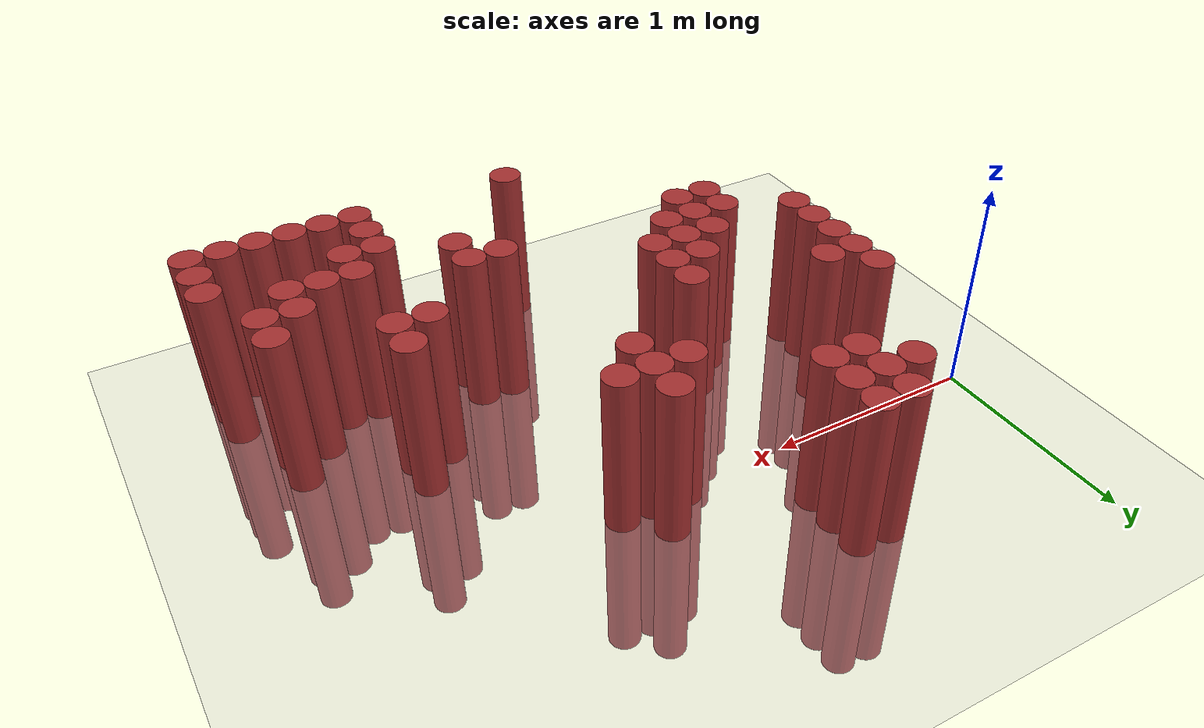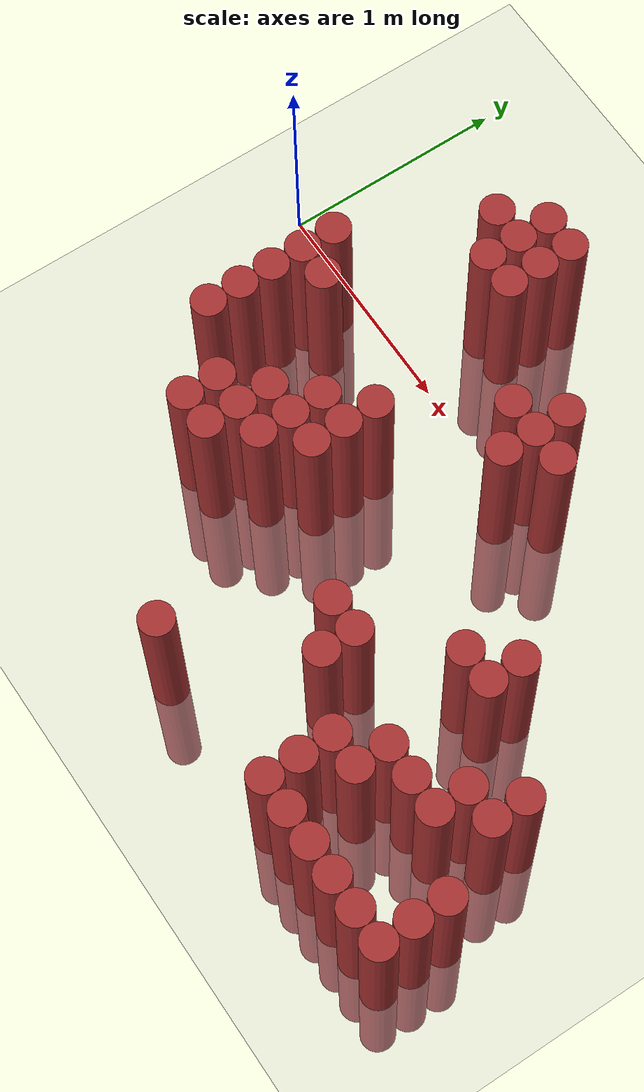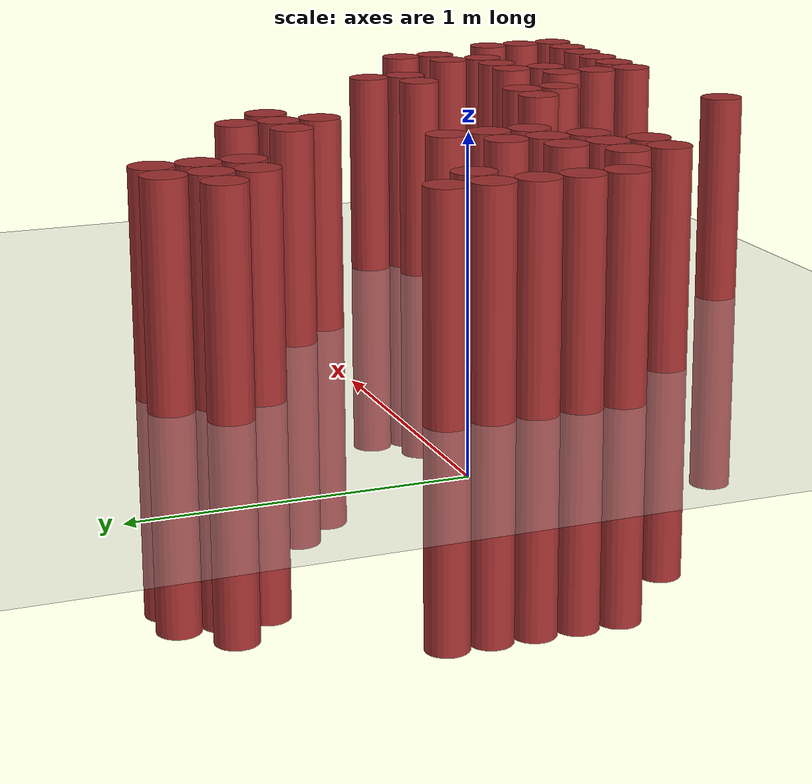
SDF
<sdf version="1.6">
 <world name="default">
  <model name="ground_plane">
   <static>1</static>
   <link name="link">
    <collision name="collision">
     <geometry><plane><normal>0 0 1</normal><size>100 100</size></plane></geometry>
     <surface><friction><ode><mu>100</mu><mu2>50</mu2></ode></friction></surface>
    </collision>
    <visual name="visual">
     <cast_shadows>0</cast_shadows>
     <geometry><plane><normal>0 0 1</normal><size>100 100</size></plane></geometry>
     <material>
      <script><uri>file://media/materials/scripts/gazebo.material</uri><name>Gazebo/Grey</name></script>
     </material>
    </visual>
   </link>
  </model>
  <model name="unit_cylinder_390">
   <static>1</static>
   <pose>0.475000 -0.725000 0.000000 0.000000 0.000000 0.000000</pose>
   <link name="link">
    <inertial>
     <mass>1</mass>
     <inertia><ixx>0.145833</ixx><ixy>0</ixy><ixz>0</ixz><iyy>0.145833</iyy><iyz>0</iyz><izz>0.125</izz></inertia>
    </inertial>
    <collision name="collision">
     <geometry><cylinder><radius>0.075000</radius><length>1.5</length></cylinder></geometry>
    </collision>
    <visual name="visual">
     <geometry><cylinder><radius>0.075000</radius><length>1.5</length></cylinder></geometry>
     <material>
      <ambient>0.648000 0.192000 0.192000 1</ambient>
      <diffuse>0.648000 0.192000 0.192000 1</diffuse>
     </material>
     <material>
      <script><name>Gazebo/Grey</name><uri>file://media/materials/scripts/gazebo.material</uri></script>
     </material>
    </visual>
   </link>
  </model>
  <model name="unit_cylinder_391">
   <static>1</static>
   <pose>0.475000 -0.575000 0.000000 0.000000 0.000000 0.000000</pose>
   <link name="link">
    <inertial>
     <mass>1</mass>
     <inertia><ixx>0.145833</ixx><ixy>0</ixy><ixz>0</ixz><iyy>0.145833</iyy><iyz>0</iyz><izz>0.125</izz></inertia>
    </inertial>
    <collision name="collision">
     <geometry><cylinder><radius>0.075000</radius><length>1.5</length></cylinder></geometry>
    </collision>
    <visual name="visual">
     <geometry><cylinder><radius>0.075000</radius><length>1.5</length></cylinder></geometry>
     <material>
      <ambient>0.648000 0.192000 0.192000 1</ambient>
      <diffuse>0.648000 0.192000 0.192000 1</diffuse>
     </material>
     <material>
      <script><name>Gazebo/Grey</name><uri>file://media/materials/scripts/gazebo.material</uri></script>
     </material>
    </visual>
   </link>
  </model>
  <model name="unit_cylinder_392">
   <static>1</static>
   <pose>0.475000 -0.425000 0.000000 0.000000 0.000000 0.000000</pose>
   <link name="link">
    <inertial>
     <mass>1</mass>
     <inertia><ixx>0.145833</ixx><ixy>0</ixy><ixz>0</ixz><iyy>0.145833</iyy><iyz>0</iyz><izz>0.125</izz></inertia>
    </inertial>
    <collision name="collision">
     <geometry><cylinder><radius>0.075000</radius><length>1.5</length></cylinder></geometry>
    </collision>
    <visual name="visual">
     <geometry><cylinder><radius>0.075000</radius><length>1.5</length></cylinder></geometry>
     <material>
      <ambient>0.648000 0.192000 0.192000 1</ambient>
      <diffuse>0.648000 0.192000 0.192000 1</diffuse>
     </material>
     <material>
      <script><name>Gazebo/Grey</name><uri>file://media/materials/scripts/gazebo.material</uri></script>
     </material>
    </visual>
   </link>
  </model>
  <model name="unit_cylinder_393">
   <static>1</static>
   <pose>0.475000 -0.275000 0.000000 0.000000 0.000000 0.000000</pose>
   <link name="link">
    <inertial>
     <mass>1</mass>
     <inertia><ixx>0.145833</ixx><ixy>0</ixy><ixz>0</ixz><iyy>0.145833</iyy><iyz>0</iyz><izz>0.125</izz></inertia>
    </inertial>
    <collision name="collision">
     <geometry><cylinder><radius>0.075000</radius><length>1.5</length></cylinder></geometry>
    </collision>
    <visual name="visual">
     <geometry><cylinder><radius>0.075000</radius><length>1.5</length></cylinder></geometry>
     <material>
      <ambient>0.648000 0.192000 0.192000 1</ambient>
      <diffuse>0.648000 0.192000 0.192000 1</diffuse>
     </material>
     <material>
      <script><name>Gazebo/Grey</name><uri>file://media/materials/scripts/gazebo.material</uri></script>
     </material>
    </visual>
   </link>
  </model>
  <model name="unit_cylinder_394">
   <static>1</static>
   <pose>0.475000 -0.125000 0.000000 0.000000 0.000000 0.000000</pose>
   <link name="link">
    <inertial>
     <mass>1</mass>
     <inertia><ixx>0.145833</ixx><ixy>0</ixy><ixz>0</ixz><iyy>0.145833</iyy><iyz>0</iyz><izz>0.125</izz></inertia>
    </inertial>
    <collision name="collision">
     <geometry><cylinder><radius>0.075000</radius><length>1.5</length></cylinder></geometry>
    </collision>
    <visual name="visual">
     <geometry><cylinder><radius>0.075000</radius><length>1.5</length></cylinder></geometry>
     <material>
      <ambient>0.648000 0.192000 0.192000 1</ambient>
      <diffuse>0.648000 0.192000 0.192000 1</diffuse>
     </material>
     <material>
      <script><name>Gazebo/Grey</name><uri>file://media/materials/scripts/gazebo.material</uri></script>
     </material>
    </visual>
   </link>
  </model>
  <model name="unit_cylinder_401">
   <static>1</static>
   <pose>0.625000 -0.275000 0.000000 0.000000 0.000000 0.000000</pose>
   <link name="link">
    <inertial>
     <mass>1</mass>
     <inertia><ixx>0.145833</ixx><ixy>0</ixy><ixz>0</ixz><iyy>0.145833</iyy><iyz>0</iyz><izz>0.125</izz></inertia>
    </inertial>
    <collision name="collision">
     <geometry><cylinder><radius>0.075000</radius><length>1.5</length></cylinder></geometry>
    </collision>
    <visual name="visual">
     <geometry><cylinder><radius>0.075000</radius><length>1.5</length></cylinder></geometry>
     <material>
      <ambient>0.648000 0.192000 0.192000 1</ambient>
      <diffuse>0.648000 0.192000 0.192000 1</diffuse>
     </material>
     <material>
      <script><name>Gazebo/Grey</name><uri>file://media/materials/scripts/gazebo.material</uri></script>
     </material>
    </visual>
   </link>
  </model>
  <model name="unit_cylinder_410">
   <static>1</static>
   <pose>0.775000 -1.025000 0.000000 0.000000 0.000000 0.000000</pose>
   <link name="link">
    <inertial>
     <mass>1</mass>
     <inertia><ixx>0.145833</ixx><ixy>0</ixy><ixz>0</ixz><iyy>0.145833</iyy><iyz>0</iyz><izz>0.125</izz></inertia>
    </inertial>
    <collision name="collision">
     <geometry><cylinder><radius>0.075000</radius><length>1.5</length></cylinder></geometry>
    </collision>
    <visual name="visual">
     <geometry><cylinder><radius>0.075000</radius><length>1.5</length></cylinder></geometry>
     <material>
      <ambient>0.648000 0.192000 0.192000 1</ambient>
      <diffuse>0.648000 0.192000 0.192000 1</diffuse>
     </material>
     <material>
      <script><name>Gazebo/Grey</name><uri>file://media/materials/scripts/gazebo.material</uri></script>
     </material>
    </visual>
   </link>
  </model>
  <model name="unit_cylinder_411">
   <static>1</static>
   <pose>0.775000 -0.875000 0.000000 0.000000 0.000000 0.000000</pose>
   <link name="link">
    <inertial>
     <mass>1</mass>
     <inertia><ixx>0.145833</ixx><ixy>0</ixy><ixz>0</ixz><iyy>0.145833</iyy><iyz>0</iyz><izz>0.125</izz></inertia>
    </inertial>
    <collision name="collision">
     <geometry><cylinder><radius>0.075000</radius><length>1.5</length></cylinder></geometry>
    </collision>
    <visual name="visual">
     <geometry><cylinder><radius>0.075000</radius><length>1.5</length></cylinder></geometry>
     <material>
      <ambient>0.648000 0.192000 0.192000 1</ambient>
      <diffuse>0.648000 0.192000 0.192000 1</diffuse>
     </material>
     <material>
      <script><name>Gazebo/Grey</name><uri>file://media/materials/scripts/gazebo.material</uri></script>
     </material>
    </visual>
   </link>
  </model>
  <model name="unit_cylinder_412">
   <static>1</static>
   <pose>0.775000 0.475000 0.000000 0.000000 0.000000 0.000000</pose>
   <link name="link">
    <inertial>
     <mass>1</mass>
     <inertia><ixx>0.145833</ixx><ixy>0</ixy><ixz>0</ixz><iyy>0.145833</iyy><iyz>0</iyz><izz>0.125</izz></inertia>
    </inertial>
    <collision name="collision">
     <geometry><cylinder><radius>0.075000</radius><length>1.5</length></cylinder></geometry>
    </collision>
    <visual name="visual">
     <geometry><cylinder><radius>0.075000</radius><length>1.5</length></cylinder></geometry>
     <material>
      <ambient>0.648000 0.192000 0.192000 1</ambient>
      <diffuse>0.648000 0.192000 0.192000 1</diffuse>
     </material>
     <material>
      <script><name>Gazebo/Grey</name><uri>file://media/materials/scripts/gazebo.material</uri></script>
     </material>
    </visual>
   </link>
  </model>
  <model name="unit_cylinder_417">
   <static>1</static>
   <pose>0.925000 -1.025000 0.000000 0.000000 0.000000 0.000000</pose>
   <link name="link">
    <inertial>
     <mass>1</mass>
     <inertia><ixx>0.145833</ixx><ixy>0</ixy><ixz>0</ixz><iyy>0.145833</iyy><iyz>0</iyz><izz>0.125</izz></inertia>
    </inertial>
    <collision name="collision">
     <geometry><cylinder><radius>0.075000</radius><length>1.5</length></cylinder></geometry>
    </collision>
    <visual name="visual">
     <geometry><cylinder><radius>0.075000</radius><length>1.5</length></cylinder></geometry>
     <material>
      <ambient>0.648000 0.192000 0.192000 1</ambient>
      <diffuse>0.648000 0.192000 0.192000 1</diffuse>
     </material>
     <material>
      <script><name>Gazebo/Grey</name><uri>file://media/materials/scripts/gazebo.material</uri></script>
     </material>
    </visual>
   </link>
  </model>
  <model name="unit_cylinder_418">
   <static>1</static>
   <pose>0.925000 -0.875000 0.000000 0.000000 0.000000 0.000000</pose>
   <link name="link">
    <inertial>
     <mass>1</mass>
     <inertia><ixx>0.145833</ixx><ixy>0</ixy><ixz>0</ixz><iyy>0.145833</iyy><iyz>0</iyz><izz>0.125</izz></inertia>
    </inertial>
    <collision name="collision">
     <geometry><cylinder><radius>0.075000</radius><length>1.5</length></cylinder></geometry>
    </collision>
    <visual name="visual">
     <geometry><cylinder><radius>0.075000</radius><length>1.5</length></cylinder></geometry>
     <material>
      <ambient>0.648000 0.192000 0.192000 1</ambient>
      <diffuse>0.648000 0.192000 0.192000 1</diffuse>
     </material>
     <material>
      <script><name>Gazebo/Grey</name><uri>file://media/materials/scripts/gazebo.material</uri></script>
     </material>
    </visual>
   </link>
  </model>
  <model name="unit_cylinder_419">
   <static>1</static>
   <pose>0.925000 -0.725000 0.000000 0.000000 0.000000 0.000000</pose>
   <link name="link">
    <inertial>
     <mass>1</mass>
     <inertia><ixx>0.145833</ixx><ixy>0</ixy><ixz>0</ixz><iyy>0.145833</iyy><iyz>0</iyz><izz>0.125</izz></inertia>
    </inertial>
    <collision name="collision">
     <geometry><cylinder><radius>0.075000</radius><length>1.5</length></cylinder></geometry>
    </collision>
    <visual name="visual">
     <geometry><cylinder><radius>0.075000</radius><length>1.5</length></cylinder></geometry>
     <material>
      <ambient>0.648000 0.192000 0.192000 1</ambient>
      <diffuse>0.648000 0.192000 0.192000 1</diffuse>
     </material>
     <material>
      <script><name>Gazebo/Grey</name><uri>file://media/materials/scripts/gazebo.material</uri></script>
     </material>
    </visual>
   </link>
  </model>
  <model name="unit_cylinder_420">
   <static>1</static>
   <pose>0.925000 0.325000 0.000000 0.000000 0.000000 0.000000</pose>
   <link name="link">
    <inertial>
     <mass>1</mass>
     <inertia><ixx>0.145833</ixx><ixy>0</ixy><ixz>0</ixz><iyy>0.145833</iyy><iyz>0</iyz><izz>0.125</izz></inertia>
    </inertial>
    <collision name="collision">
     <geometry><cylinder><radius>0.075000</radius><length>1.5</length></cylinder></geometry>
    </collision>
    <visual name="visual">
     <geometry><cylinder><radius>0.075000</radius><length>1.5</length></cylinder></geometry>
     <material>
      <ambient>0.648000 0.192000 0.192000 1</ambient>
      <diffuse>0.648000 0.192000 0.192000 1</diffuse>
     </material>
     <material>
      <script><name>Gazebo/Grey</name><uri>file://media/materials/scripts/gazebo.material</uri></script>
     </material>
    </visual>
   </link>
  </model>
  <model name="unit_cylinder_421">
   <static>1</static>
   <pose>0.925000 0.475000 0.000000 0.000000 0.000000 0.000000</pose>
   <link name="link">
    <inertial>
     <mass>1</mass>
     <inertia><ixx>0.145833</ixx><ixy>0</ixy><ixz>0</ixz><iyy>0.145833</iyy><iyz>0</iyz><izz>0.125</izz></inertia>
    </inertial>
    <collision name="collision">
     <geometry><cylinder><radius>0.075000</radius><length>1.5</length></cylinder></geometry>
    </collision>
    <visual name="visual">
     <geometry><cylinder><radius>0.075000</radius><length>1.5</length></cylinder></geometry>
     <material>
      <ambient>0.648000 0.192000 0.192000 1</ambient>
      <diffuse>0.648000 0.192000 0.192000 1</diffuse>
     </material>
     <material>
      <script><name>Gazebo/Grey</name><uri>file://media/materials/scripts/gazebo.material</uri></script>
     </material>
    </visual>
   </link>
  </model>
  <model name="unit_cylinder_422">
   <static>1</static>
   <pose>0.925000 0.625000 0.000000 0.000000 0.000000 0.000000</pose>
   <link name="link">
    <inertial>
     <mass>1</mass>
     <inertia><ixx>0.145833</ixx><ixy>0</ixy><ixz>0</ixz><iyy>0.145833</iyy><iyz>0</iyz><izz>0.125</izz></inertia>
    </inertial>
    <collision name="collision">
     <geometry><cylinder><radius>0.075000</radius><length>1.5</length></cylinder></geometry>
    </collision>
    <visual name="visual">
     <geometry><cylinder><radius>0.075000</radius><length>1.5</length></cylinder></geometry>
     <material>
      <ambient>0.648000 0.192000 0.192000 1</ambient>
      <diffuse>0.648000 0.192000 0.192000 1</diffuse>
     </material>
     <material>
      <script><name>Gazebo/Grey</name><uri>file://media/materials/scripts/gazebo.material</uri></script>
     </material>
    </visual>
   </link>
  </model>
  <model name="unit_cylinder_428">
   <static>1</static>
   <pose>1.075000 -0.875000 0.000000 0.000000 0.000000 0.000000</pose>
   <link name="link">
    <inertial>
     <mass>1</mass>
     <inertia><ixx>0.145833</ixx><ixy>0</ixy><ixz>0</ixz><iyy>0.145833</iyy><iyz>0</iyz><izz>0.125</izz></inertia>
    </inertial>
    <collision name="collision">
     <geometry><cylinder><radius>0.075000</radius><length>1.5</length></cylinder></geometry>
    </collision>
    <visual name="visual">
     <geometry><cylinder><radius>0.075000</radius><length>1.5</length></cylinder></geometry>
     <material>
      <ambient>0.648000 0.192000 0.192000 1</ambient>
      <diffuse>0.648000 0.192000 0.192000 1</diffuse>
     </material>
     <material>
      <script><name>Gazebo/Grey</name><uri>file://media/materials/scripts/gazebo.material</uri></script>
     </material>
    </visual>
   </link>
  </model>
  <model name="unit_cylinder_429">
   <static>1</static>
   <pose>1.075000 -0.725000 0.000000 0.000000 0.000000 0.000000</pose>
   <link name="link">
    <inertial>
     <mass>1</mass>
     <inertia><ixx>0.145833</ixx><ixy>0</ixy><ixz>0</ixz><iyy>0.145833</iyy><iyz>0</iyz><izz>0.125</izz></inertia>
    </inertial>
    <collision name="collision">
     <geometry><cylinder><radius>0.075000</radius><length>1.5</length></cylinder></geometry>
    </collision>
    <visual name="visual">
     <geometry><cylinder><radius>0.075000</radius><length>1.5</length></cylinder></geometry>
     <material>
      <ambient>0.648000 0.192000 0.192000 1</ambient>
      <diffuse>0.648000 0.192000 0.192000 1</diffuse>
     </material>
     <material>
      <script><name>Gazebo/Grey</name><uri>file://media/materials/scripts/gazebo.material</uri></script>
     </material>
    </visual>
   </link>
  </model>
  <model name="unit_cylinder_430">
   <static>1</static>
   <pose>1.075000 -0.575000 0.000000 0.000000 0.000000 0.000000</pose>
   <link name="link">
    <inertial>
     <mass>1</mass>
     <inertia><ixx>0.145833</ixx><ixy>0</ixy><ixz>0</ixz><iyy>0.145833</iyy><iyz>0</iyz><izz>0.125</izz></inertia>
    </inertial>
    <collision name="collision">
     <geometry><cylinder><radius>0.075000</radius><length>1.5</length></cylinder></geometry>
    </collision>
    <visual name="visual">
     <geometry><cylinder><radius>0.075000</radius><length>1.5</length></cylinder></geometry>
     <material>
      <ambient>0.648000 0.192000 0.192000 1</ambient>
      <diffuse>0.648000 0.192000 0.192000 1</diffuse>
     </material>
     <material>
      <script><name>Gazebo/Grey</name><uri>file://media/materials/scripts/gazebo.material</uri></script>
     </material>
    </visual>
   </link>
  </model>
  <model name="unit_cylinder_431">
   <static>1</static>
   <pose>1.075000 0.325000 0.000000 0.000000 0.000000 0.000000</pose>
   <link name="link">
    <inertial>
     <mass>1</mass>
     <inertia><ixx>0.145833</ixx><ixy>0</ixy><ixz>0</ixz><iyy>0.145833</iyy><iyz>0</iyz><izz>0.125</izz></inertia>
    </inertial>
    <collision name="collision">
     <geometry><cylinder><radius>0.075000</radius><length>1.5</length></cylinder></geometry>
    </collision>
    <visual name="visual">
     <geometry><cylinder><radius>0.075000</radius><length>1.5</length></cylinder></geometry>
     <material>
      <ambient>0.648000 0.192000 0.192000 1</ambient>
      <diffuse>0.648000 0.192000 0.192000 1</diffuse>
     </material>
     <material>
      <script><name>Gazebo/Grey</name><uri>file://media/materials/scripts/gazebo.material</uri></script>
     </material>
    </visual>
   </link>
  </model>
  <model name="unit_cylinder_432">
   <static>1</static>
   <pose>1.075000 0.475000 0.000000 0.000000 0.000000 0.000000</pose>
   <link name="link">
    <inertial>
     <mass>1</mass>
     <inertia><ixx>0.145833</ixx><ixy>0</ixy><ixz>0</ixz><iyy>0.145833</iyy><iyz>0</iyz><izz>0.125</izz></inertia>
    </inertial>
    <collision name="collision">
     <geometry><cylinder><radius>0.075000</radius><length>1.5</length></cylinder></geometry>
    </collision>
    <visual name="visual">
     <geometry><cylinder><radius>0.075000</radius><length>1.5</length></cylinder></geometry>
     <material>
      <ambient>0.648000 0.192000 0.192000 1</ambient>
      <diffuse>0.648000 0.192000 0.192000 1</diffuse>
     </material>
     <material>
      <script><name>Gazebo/Grey</name><uri>file://media/materials/scripts/gazebo.material</uri></script>
     </material>
    </visual>
   </link>
  </model>
  <model name="unit_cylinder_433">
   <static>1</static>
   <pose>1.075000 0.625000 0.000000 0.000000 0.000000 0.000000</pose>
   <link name="link">
    <inertial>
     <mass>1</mass>
     <inertia><ixx>0.145833</ixx><ixy>0</ixy><ixz>0</ixz><iyy>0.145833</iyy><iyz>0</iyz><izz>0.125</izz></inertia>
    </inertial>
    <collision name="collision">
     <geometry><cylinder><radius>0.075000</radius><length>1.5</length></cylinder></geometry>
    </collision>
    <visual name="visual">
     <geometry><cylinder><radius>0.075000</radius><length>1.5</length></cylinder></geometry>
     <material>
      <ambient>0.648000 0.192000 0.192000 1</ambient>
      <diffuse>0.648000 0.192000 0.192000 1</diffuse>
     </material>
     <material>
      <script><name>Gazebo/Grey</name><uri>file://media/materials/scripts/gazebo.material</uri></script>
     </material>
    </visual>
   </link>
  </model>
  <model name="unit_cylinder_446">
   <static>1</static>
   <pose>1.225000 -0.725000 0.000000 0.000000 0.000000 0.000000</pose>
   <link name="link">
    <inertial>
     <mass>1</mass>
     <inertia><ixx>0.145833</ixx><ixy>0</ixy><ixz>0</ixz><iyy>0.145833</iyy><iyz>0</iyz><izz>0.125</izz></inertia>
    </inertial>
    <collision name="collision">
     <geometry><cylinder><radius>0.075000</radius><length>1.5</length></cylinder></geometry>
    </collision>
    <visual name="visual">
     <geometry><cylinder><radius>0.075000</radius><length>1.5</length></cylinder></geometry>
     <material>
      <ambient>0.648000 0.192000 0.192000 1</ambient>
      <diffuse>0.648000 0.192000 0.192000 1</diffuse>
     </material>
     <material>
      <script><name>Gazebo/Grey</name><uri>file://media/materials/scripts/gazebo.material</uri></script>
     </material>
    </visual>
   </link>
  </model>
  <model name="unit_cylinder_447">
   <static>1</static>
   <pose>1.225000 -0.575000 0.000000 0.000000 0.000000 0.000000</pose>
   <link name="link">
    <inertial>
     <mass>1</mass>
     <inertia><ixx>0.145833</ixx><ixy>0</ixy><ixz>0</ixz><iyy>0.145833</iyy><iyz>0</iyz><izz>0.125</izz></inertia>
    </inertial>
    <collision name="collision">
     <geometry><cylinder><radius>0.075000</radius><length>1.5</length></cylinder></geometry>
    </collision>
    <visual name="visual">
     <geometry><cylinder><radius>0.075000</radius><length>1.5</length></cylinder></geometry>
     <material>
      <ambient>0.648000 0.192000 0.192000 1</ambient>
      <diffuse>0.648000 0.192000 0.192000 1</diffuse>
     </material>
     <material>
      <script><name>Gazebo/Grey</name><uri>file://media/materials/scripts/gazebo.material</uri></script>
     </material>
    </visual>
   </link>
  </model>
  <model name="unit_cylinder_448">
   <static>1</static>
   <pose>1.225000 -0.425000 0.000000 0.000000 0.000000 0.000000</pose>
   <link name="link">
    <inertial>
     <mass>1</mass>
     <inertia><ixx>0.145833</ixx><ixy>0</ixy><ixz>0</ixz><iyy>0.145833</iyy><iyz>0</iyz><izz>0.125</izz></inertia>
    </inertial>
    <collision name="collision">
     <geometry><cylinder><radius>0.075000</radius><length>1.5</length></cylinder></geometry>
    </collision>
    <visual name="visual">
     <geometry><cylinder><radius>0.075000</radius><length>1.5</length></cylinder></geometry>
     <material>
      <ambient>0.648000 0.192000 0.192000 1</ambient>
      <diffuse>0.648000 0.192000 0.192000 1</diffuse>
     </material>
     <material>
      <script><name>Gazebo/Grey</name><uri>file://media/materials/scripts/gazebo.material</uri></script>
     </material>
    </visual>
   </link>
  </model>
  <model name="unit_cylinder_470">
   <static>1</static>
   <pose>1.525000 -1.625000 0.000000 0.000000 0.000000 0.000000</pose>
   <link name="link">
    <inertial>
     <mass>1</mass>
     <inertia><ixx>0.145833</ixx><ixy>0</ixy><ixz>0</ixz><iyy>0.145833</iyy><iyz>0</iyz><izz>0.125</izz></inertia>
    </inertial>
    <collision name="collision">
     <geometry><cylinder><radius>0.075000</radius><length>1.5</length></cylinder></geometry>
    </collision>
    <visual name="visual">
     <geometry><cylinder><radius>0.075000</radius><length>1.5</length></cylinder></geometry>
     <material>
      <ambient>0.648000 0.192000 0.192000 1</ambient>
      <diffuse>0.648000 0.192000 0.192000 1</diffuse>
     </material>
     <material>
      <script><name>Gazebo/Grey</name><uri>file://media/materials/scripts/gazebo.material</uri></script>
     </material>
    </visual>
   </link>
  </model>
  <model name="unit_cylinder_471">
   <static>1</static>
   <pose>1.525000 0.025000 0.000000 0.000000 0.000000 0.000000</pose>
   <link name="link">
    <inertial>
     <mass>1</mass>
     <inertia><ixx>0.145833</ixx><ixy>0</ixy><ixz>0</ixz><iyy>0.145833</iyy><iyz>0</iyz><izz>0.125</izz></inertia>
    </inertial>
    <collision name="collision">
     <geometry><cylinder><radius>0.075000</radius><length>1.5</length></cylinder></geometry>
    </collision>
    <visual name="visual">
     <geometry><cylinder><radius>0.075000</radius><length>1.5</length></cylinder></geometry>
     <material>
      <ambient>0.648000 0.192000 0.192000 1</ambient>
      <diffuse>0.648000 0.192000 0.192000 1</diffuse>
     </material>
     <material>
      <script><name>Gazebo/Grey</name><uri>file://media/materials/scripts/gazebo.material</uri></script>
     </material>
    </visual>
   </link>
  </model>
  <model name="unit_cylinder_474">
   <static>1</static>
   <pose>1.675000 -0.125000 0.000000 0.000000 0.000000 0.000000</pose>
   <link name="link">
    <inertial>
     <mass>1</mass>
     <inertia><ixx>0.145833</ixx><ixy>0</ixy><ixz>0</ixz><iyy>0.145833</iyy><iyz>0</iyz><izz>0.125</izz></inertia>
    </inertial>
    <collision name="collision">
     <geometry><cylinder><radius>0.075000</radius><length>1.5</length></cylinder></geometry>
    </collision>
    <visual name="visual">
     <geometry><cylinder><radius>0.075000</radius><length>1.5</length></cylinder></geometry>
     <material>
      <ambient>0.648000 0.192000 0.192000 1</ambient>
      <diffuse>0.648000 0.192000 0.192000 1</diffuse>
     </material>
     <material>
      <script><name>Gazebo/Grey</name><uri>file://media/materials/scripts/gazebo.material</uri></script>
     </material>
    </visual>
   </link>
  </model>
  <model name="unit_cylinder_475">
   <static>1</static>
   <pose>1.675000 0.025000 0.000000 0.000000 0.000000 0.000000</pose>
   <link name="link">
    <inertial>
     <mass>1</mass>
     <inertia><ixx>0.145833</ixx><ixy>0</ixy><ixz>0</ixz><iyy>0.145833</iyy><iyz>0</iyz><izz>0.125</izz></inertia>
    </inertial>
    <collision name="collision">
     <geometry><cylinder><radius>0.075000</radius><length>1.5</length></cylinder></geometry>
    </collision>
    <visual name="visual">
     <geometry><cylinder><radius>0.075000</radius><length>1.5</length></cylinder></geometry>
     <material>
      <ambient>0.648000 0.192000 0.192000 1</ambient>
      <diffuse>0.648000 0.192000 0.192000 1</diffuse>
     </material>
     <material>
      <script><name>Gazebo/Grey</name><uri>file://media/materials/scripts/gazebo.material</uri></script>
     </material>
    </visual>
   </link>
  </model>
  <model name="unit_cylinder_476">
   <static>1</static>
   <pose>1.675000 0.175000 0.000000 0.000000 0.000000 0.000000</pose>
   <link name="link">
    <inertial>
     <mass>1</mass>
     <inertia><ixx>0.145833</ixx><ixy>0</ixy><ixz>0</ixz><iyy>0.145833</iyy><iyz>0</iyz><izz>0.125</izz></inertia>
    </inertial>
    <collision name="collision">
     <geometry><cylinder><radius>0.075000</radius><length>1.5</length></cylinder></geometry>
    </collision>
    <visual name="visual">
     <geometry><cylinder><radius>0.075000</radius><length>1.5</length></cylinder></geometry>
     <material>
      <ambient>0.648000 0.192000 0.192000 1</ambient>
      <diffuse>0.648000 0.192000 0.192000 1</diffuse>
     </material>
     <material>
      <script><name>Gazebo/Grey</name><uri>file://media/materials/scripts/gazebo.material</uri></script>
     </material>
    </visual>
   </link>
  </model>
  <model name="unit_cylinder_478">
   <static>1</static>
   <pose>1.825000 -1.025000 0.000000 0.000000 0.000000 0.000000</pose>
   <link name="link">
    <inertial>
     <mass>1</mass>
     <inertia><ixx>0.145833</ixx><ixy>0</ixy><ixz>0</ixz><iyy>0.145833</iyy><iyz>0</iyz><izz>0.125</izz></inertia>
    </inertial>
    <collision name="collision">
     <geometry><cylinder><radius>0.075000</radius><length>1.5</length></cylinder></geometry>
    </collision>
    <visual name="visual">
     <geometry><cylinder><radius>0.075000</radius><length>1.5</length></cylinder></geometry>
     <material>
      <ambient>0.648000 0.192000 0.192000 1</ambient>
      <diffuse>0.648000 0.192000 0.192000 1</diffuse>
     </material>
     <material>
      <script><name>Gazebo/Grey</name><uri>file://media/materials/scripts/gazebo.material</uri></script>
     </material>
    </visual>
   </link>
  </model>
  <model name="unit_cylinder_479">
   <static>1</static>
   <pose>1.825000 0.025000 0.000000 0.000000 0.000000 0.000000</pose>
   <link name="link">
    <inertial>
     <mass>1</mass>
     <inertia><ixx>0.145833</ixx><ixy>0</ixy><ixz>0</ixz><iyy>0.145833</iyy><iyz>0</iyz><izz>0.125</izz></inertia>
    </inertial>
    <collision name="collision">
     <geometry><cylinder><radius>0.075000</radius><length>1.5</length></cylinder></geometry>
    </collision>
    <visual name="visual">
     <geometry><cylinder><radius>0.075000</radius><length>1.5</length></cylinder></geometry>
     <material>
      <ambient>0.648000 0.192000 0.192000 1</ambient>
      <diffuse>0.648000 0.192000 0.192000 1</diffuse>
     </material>
     <material>
      <script><name>Gazebo/Grey</name><uri>file://media/materials/scripts/gazebo.material</uri></script>
     </material>
    </visual>
   </link>
  </model>
  <model name="unit_cylinder_483">
   <static>1</static>
   <pose>1.975000 -1.175000 0.000000 0.000000 0.000000 0.000000</pose>
   <link name="link">
    <inertial>
     <mass>1</mass>
     <inertia><ixx>0.145833</ixx><ixy>0</ixy><ixz>0</ixz><iyy>0.145833</iyy><iyz>0</iyz><izz>0.125</izz></inertia>
    </inertial>
    <collision name="collision">
     <geometry><cylinder><radius>0.075000</radius><length>1.5</length></cylinder></geometry>
    </collision>
    <visual name="visual">
     <geometry><cylinder><radius>0.075000</radius><length>1.5</length></cylinder></geometry>
     <material>
      <ambient>0.648000 0.192000 0.192000 1</ambient>
      <diffuse>0.648000 0.192000 0.192000 1</diffuse>
     </material>
     <material>
      <script><name>Gazebo/Grey</name><uri>file://media/materials/scripts/gazebo.material</uri></script>
     </material>
    </visual>
   </link>
  </model>
  <model name="unit_cylinder_484">
   <static>1</static>
   <pose>1.975000 -1.025000 0.000000 0.000000 0.000000 0.000000</pose>
   <link name="link">
    <inertial>
     <mass>1</mass>
     <inertia><ixx>0.145833</ixx><ixy>0</ixy><ixz>0</ixz><iyy>0.145833</iyy><iyz>0</iyz><izz>0.125</izz></inertia>
    </inertial>
    <collision name="collision">
     <geometry><cylinder><radius>0.075000</radius><length>1.5</length></cylinder></geometry>
    </collision>
    <visual name="visual">
     <geometry><cylinder><radius>0.075000</radius><length>1.5</length></cylinder></geometry>
     <material>
      <ambient>0.648000 0.192000 0.192000 1</ambient>
      <diffuse>0.648000 0.192000 0.192000 1</diffuse>
     </material>
     <material>
      <script><name>Gazebo/Grey</name><uri>file://media/materials/scripts/gazebo.material</uri></script>
     </material>
    </visual>
   </link>
  </model>
  <model name="unit_cylinder_494">
   <static>1</static>
   <pose>2.275000 -1.625000 0.000000 0.000000 0.000000 0.000000</pose>
   <link name="link">
    <inertial>
     <mass>1</mass>
     <inertia><ixx>0.145833</ixx><ixy>0</ixy><ixz>0</ixz><iyy>0.145833</iyy><iyz>0</iyz><izz>0.125</izz></inertia>
    </inertial>
    <collision name="collision">
     <geometry><cylinder><radius>0.075000</radius><length>1.5</length></cylinder></geometry>
    </collision>
    <visual name="visual">
     <geometry><cylinder><radius>0.075000</radius><length>1.5</length></cylinder></geometry>
     <material>
      <ambient>0.648000 0.192000 0.192000 1</ambient>
      <diffuse>0.648000 0.192000 0.192000 1</diffuse>
     </material>
     <material>
      <script><name>Gazebo/Grey</name><uri>file://media/materials/scripts/gazebo.material</uri></script>
     </material>
    </visual>
   </link>
  </model>
  <model name="unit_cylinder_495">
   <static>1</static>
   <pose>2.275000 -1.475000 0.000000 0.000000 0.000000 0.000000</pose>
   <link name="link">
    <inertial>
     <mass>1</mass>
     <inertia><ixx>0.145833</ixx><ixy>0</ixy><ixz>0</ixz><iyy>0.145833</iyy><iyz>0</iyz><izz>0.125</izz></inertia>
    </inertial>
    <collision name="collision">
     <geometry><cylinder><radius>0.075000</radius><length>1.5</length></cylinder></geometry>
    </collision>
    <visual name="visual">
     <geometry><cylinder><radius>0.075000</radius><length>1.5</length></cylinder></geometry>
     <material>
      <ambient>0.648000 0.192000 0.192000 1</ambient>
      <diffuse>0.648000 0.192000 0.192000 1</diffuse>
     </material>
     <material>
      <script><name>Gazebo/Grey</name><uri>file://media/materials/scripts/gazebo.material</uri></script>
     </material>
    </visual>
   </link>
  </model>
  <model name="unit_cylinder_496">
   <static>1</static>
   <pose>2.275000 -1.325000 0.000000 0.000000 0.000000 0.000000</pose>
   <link name="link">
    <inertial>
     <mass>1</mass>
     <inertia><ixx>0.145833</ixx><ixy>0</ixy><ixz>0</ixz><iyy>0.145833</iyy><iyz>0</iyz><izz>0.125</izz></inertia>
    </inertial>
    <collision name="collision">
     <geometry><cylinder><radius>0.075000</radius><length>1.5</length></cylinder></geometry>
    </collision>
    <visual name="visual">
     <geometry><cylinder><radius>0.075000</radius><length>1.5</length></cylinder></geometry>
     <material>
      <ambient>0.648000 0.192000 0.192000 1</ambient>
      <diffuse>0.648000 0.192000 0.192000 1</diffuse>
     </material>
     <material>
      <script><name>Gazebo/Grey</name><uri>file://media/materials/scripts/gazebo.material</uri></script>
     </material>
    </visual>
   </link>
  </model>
  <model name="unit_cylinder_497">
   <static>1</static>
   <pose>2.275000 -0.725000 0.000000 0.000000 0.000000 0.000000</pose>
   <link name="link">
    <inertial>
     <mass>1</mass>
     <inertia><ixx>0.145833</ixx><ixy>0</ixy><ixz>0</ixz><iyy>0.145833</iyy><iyz>0</iyz><izz>0.125</izz></inertia>
    </inertial>
    <collision name="collision">
     <geometry><cylinder><radius>0.075000</radius><length>1.5</length></cylinder></geometry>
    </collision>
    <visual name="visual">
     <geometry><cylinder><radius>0.075000</radius><length>1.5</length></cylinder></geometry>
     <material>
      <ambient>0.648000 0.192000 0.192000 1</ambient>
      <diffuse>0.648000 0.192000 0.192000 1</diffuse>
     </material>
     <material>
      <script><name>Gazebo/Grey</name><uri>file://media/materials/scripts/gazebo.material</uri></script>
     </material>
    </visual>
   </link>
  </model>
  <model name="unit_cylinder_502">
   <static>1</static>
   <pose>2.425000 -1.625000 0.000000 0.000000 0.000000 0.000000</pose>
   <link name="link">
    <inertial>
     <mass>1</mass>
     <inertia><ixx>0.145833</ixx><ixy>0</ixy><ixz>0</ixz><iyy>0.145833</iyy><iyz>0</iyz><izz>0.125</izz></inertia>
    </inertial>
    <collision name="collision">
     <geometry><cylinder><radius>0.075000</radius><length>1.5</length></cylinder></geometry>
    </collision>
    <visual name="visual">
     <geometry><cylinder><radius>0.075000</radius><length>1.5</length></cylinder></geometry>
     <material>
      <ambient>0.648000 0.192000 0.192000 1</ambient>
      <diffuse>0.648000 0.192000 0.192000 1</diffuse>
     </material>
     <material>
      <script><name>Gazebo/Grey</name><uri>file://media/materials/scripts/gazebo.material</uri></script>
     </material>
    </visual>
   </link>
  </model>
  <model name="unit_cylinder_503">
   <static>1</static>
   <pose>2.425000 -1.325000 0.000000 0.000000 0.000000 0.000000</pose>
   <link name="link">
    <inertial>
     <mass>1</mass>
     <inertia><ixx>0.145833</ixx><ixy>0</ixy><ixz>0</ixz><iyy>0.145833</iyy><iyz>0</iyz><izz>0.125</izz></inertia>
    </inertial>
    <collision name="collision">
     <geometry><cylinder><radius>0.075000</radius><length>1.5</length></cylinder></geometry>
    </collision>
    <visual name="visual">
     <geometry><cylinder><radius>0.075000</radius><length>1.5</length></cylinder></geometry>
     <material>
      <ambient>0.648000 0.192000 0.192000 1</ambient>
      <diffuse>0.648000 0.192000 0.192000 1</diffuse>
     </material>
     <material>
      <script><name>Gazebo/Grey</name><uri>file://media/materials/scripts/gazebo.material</uri></script>
     </material>
    </visual>
   </link>
  </model>
  <model name="unit_cylinder_504">
   <static>1</static>
   <pose>2.425000 -1.175000 0.000000 0.000000 0.000000 0.000000</pose>
   <link name="link">
    <inertial>
     <mass>1</mass>
     <inertia><ixx>0.145833</ixx><ixy>0</ixy><ixz>0</ixz><iyy>0.145833</iyy><iyz>0</iyz><izz>0.125</izz></inertia>
    </inertial>
    <collision name="collision">
     <geometry><cylinder><radius>0.075000</radius><length>1.5</length></cylinder></geometry>
    </collision>
    <visual name="visual">
     <geometry><cylinder><radius>0.075000</radius><length>1.5</length></cylinder></geometry>
     <material>
      <ambient>0.648000 0.192000 0.192000 1</ambient>
      <diffuse>0.648000 0.192000 0.192000 1</diffuse>
     </material>
     <material>
      <script><name>Gazebo/Grey</name><uri>file://media/materials/scripts/gazebo.material</uri></script>
     </material>
    </visual>
   </link>
  </model>
  <model name="unit_cylinder_505">
   <static>1</static>
   <pose>2.425000 -0.725000 0.000000 0.000000 0.000000 0.000000</pose>
   <link name="link">
    <inertial>
     <mass>1</mass>
     <inertia><ixx>0.145833</ixx><ixy>0</ixy><ixz>0</ixz><iyy>0.145833</iyy><iyz>0</iyz><izz>0.125</izz></inertia>
    </inertial>
    <collision name="collision">
     <geometry><cylinder><radius>0.075000</radius><length>1.5</length></cylinder></geometry>
    </collision>
    <visual name="visual">
     <geometry><cylinder><radius>0.075000</radius><length>1.5</length></cylinder></geometry>
     <material>
      <ambient>0.648000 0.192000 0.192000 1</ambient>
      <diffuse>0.648000 0.192000 0.192000 1</diffuse>
     </material>
     <material>
      <script><name>Gazebo/Grey</name><uri>file://media/materials/scripts/gazebo.material</uri></script>
     </material>
    </visual>
   </link>
  </model>
  <model name="unit_cylinder_506">
   <static>1</static>
   <pose>2.425000 -0.575000 0.000000 0.000000 0.000000 0.000000</pose>
   <link name="link">
    <inertial>
     <mass>1</mass>
     <inertia><ixx>0.145833</ixx><ixy>0</ixy><ixz>0</ixz><iyy>0.145833</iyy><iyz>0</iyz><izz>0.125</izz></inertia>
    </inertial>
    <collision name="collision">
     <geometry><cylinder><radius>0.075000</radius><length>1.5</length></cylinder></geometry>
    </collision>
    <visual name="visual">
     <geometry><cylinder><radius>0.075000</radius><length>1.5</length></cylinder></geometry>
     <material>
      <ambient>0.648000 0.192000 0.192000 1</ambient>
      <diffuse>0.648000 0.192000 0.192000 1</diffuse>
     </material>
     <material>
      <script><name>Gazebo/Grey</name><uri>file://media/materials/scripts/gazebo.material</uri></script>
     </material>
    </visual>
   </link>
  </model>
  <model name="unit_cylinder_508">
   <static>1</static>
   <pose>2.575000 -1.625000 0.000000 0.000000 0.000000 0.000000</pose>
   <link name="link">
    <inertial>
     <mass>1</mass>
     <inertia><ixx>0.145833</ixx><ixy>0</ixy><ixz>0</ixz><iyy>0.145833</iyy><iyz>0</iyz><izz>0.125</izz></inertia>
    </inertial>
    <collision name="collision">
     <geometry><cylinder><radius>0.075000</radius><length>1.5</length></cylinder></geometry>
    </collision>
    <visual name="visual">
     <geometry><cylinder><radius>0.075000</radius><length>1.5</length></cylinder></geometry>
     <material>
      <ambient>0.648000 0.192000 0.192000 1</ambient>
      <diffuse>0.648000 0.192000 0.192000 1</diffuse>
     </material>
     <material>
      <script><name>Gazebo/Grey</name><uri>file://media/materials/scripts/gazebo.material</uri></script>
     </material>
    </visual>
   </link>
  </model>
  <model name="unit_cylinder_509">
   <static>1</static>
   <pose>2.575000 -1.175000 0.000000 0.000000 0.000000 0.000000</pose>
   <link name="link">
    <inertial>
     <mass>1</mass>
     <inertia><ixx>0.145833</ixx><ixy>0</ixy><ixz>0</ixz><iyy>0.145833</iyy><iyz>0</iyz><izz>0.125</izz></inertia>
    </inertial>
    <collision name="collision">
     <geometry><cylinder><radius>0.075000</radius><length>1.5</length></cylinder></geometry>
    </collision>
    <visual name="visual">
     <geometry><cylinder><radius>0.075000</radius><length>1.5</length></cylinder></geometry>
     <material>
      <ambient>0.648000 0.192000 0.192000 1</ambient>
      <diffuse>0.648000 0.192000 0.192000 1</diffuse>
     </material>
     <material>
      <script><name>Gazebo/Grey</name><uri>file://media/materials/scripts/gazebo.material</uri></script>
     </material>
    </visual>
   </link>
  </model>
  <model name="unit_cylinder_511">
   <static>1</static>
   <pose>2.725000 -1.625000 0.000000 0.000000 0.000000 0.000000</pose>
   <link name="link">
    <inertial>
     <mass>1</mass>
     <inertia><ixx>0.145833</ixx><ixy>0</ixy><ixz>0</ixz><iyy>0.145833</iyy><iyz>0</iyz><izz>0.125</izz></inertia>
    </inertial>
    <collision name="collision">
     <geometry><cylinder><radius>0.075000</radius><length>1.5</length></cylinder></geometry>
    </collision>
    <visual name="visual">
     <geometry><cylinder><radius>0.075000</radius><length>1.5</length></cylinder></geometry>
     <material>
      <ambient>0.648000 0.192000 0.192000 1</ambient>
      <diffuse>0.648000 0.192000 0.192000 1</diffuse>
     </material>
     <material>
      <script><name>Gazebo/Grey</name><uri>file://media/materials/scripts/gazebo.material</uri></script>
     </material>
    </visual>
   </link>
  </model>
  <model name="unit_cylinder_512">
   <static>1</static>
   <pose>2.725000 -1.175000 0.000000 0.000000 0.000000 0.000000</pose>
   <link name="link">
    <inertial>
     <mass>1</mass>
     <inertia><ixx>0.145833</ixx><ixy>0</ixy><ixz>0</ixz><iyy>0.145833</iyy><iyz>0</iyz><izz>0.125</izz></inertia>
    </inertial>
    <collision name="collision">
     <geometry><cylinder><radius>0.075000</radius><length>1.5</length></cylinder></geometry>
    </collision>
    <visual name="visual">
     <geometry><cylinder><radius>0.075000</radius><length>1.5</length></cylinder></geometry>
     <material>
      <ambient>0.648000 0.192000 0.192000 1</ambient>
      <diffuse>0.648000 0.192000 0.192000 1</diffuse>
     </material>
     <material>
      <script><name>Gazebo/Grey</name><uri>file://media/materials/scripts/gazebo.material</uri></script>
     </material>
    </visual>
   </link>
  </model>
  <model name="unit_cylinder_513">
   <static>1</static>
   <pose>2.725000 -1.025000 0.000000 0.000000 0.000000 0.000000</pose>
   <link name="link">
    <inertial>
     <mass>1</mass>
     <inertia><ixx>0.145833</ixx><ixy>0</ixy><ixz>0</ixz><iyy>0.145833</iyy><iyz>0</iyz><izz>0.125</izz></inertia>
    </inertial>
    <collision name="collision">
     <geometry><cylinder><radius>0.075000</radius><length>1.5</length></cylinder></geometry>
    </collision>
    <visual name="visual">
     <geometry><cylinder><radius>0.075000</radius><length>1.5</length></cylinder></geometry>
     <material>
      <ambient>0.648000 0.192000 0.192000 1</ambient>
      <diffuse>0.648000 0.192000 0.192000 1</diffuse>
     </material>
     <material>
      <script><name>Gazebo/Grey</name><uri>file://media/materials/scripts/gazebo.material</uri></script>
     </material>
    </visual>
   </link>
  </model>
  <model name="unit_cylinder_522">
   <static>1</static>
   <pose>2.875000 -1.625000 0.000000 0.000000 0.000000 0.000000</pose>
   <link name="link">
    <inertial>
     <mass>1</mass>
     <inertia><ixx>0.145833</ixx><ixy>0</ixy><ixz>0</ixz><iyy>0.145833</iyy><iyz>0</iyz><izz>0.125</izz></inertia>
    </inertial>
    <collision name="collision">
     <geometry><cylinder><radius>0.075000</radius><length>1.5</length></cylinder></geometry>
    </collision>
    <visual name="visual">
     <geometry><cylinder><radius>0.075000</radius><length>1.5</length></cylinder></geometry>
     <material>
      <ambient>0.648000 0.192000 0.192000 1</ambient>
      <diffuse>0.648000 0.192000 0.192000 1</diffuse>
     </material>
     <material>
      <script><name>Gazebo/Grey</name><uri>file://media/materials/scripts/gazebo.material</uri></script>
     </material>
    </visual>
   </link>
  </model>
  <model name="unit_cylinder_523">
   <static>1</static>
   <pose>2.875000 -1.025000 0.000000 0.000000 0.000000 0.000000</pose>
   <link name="link">
    <inertial>
     <mass>1</mass>
     <inertia><ixx>0.145833</ixx><ixy>0</ixy><ixz>0</ixz><iyy>0.145833</iyy><iyz>0</iyz><izz>0.125</izz></inertia>
    </inertial>
    <collision name="collision">
     <geometry><cylinder><radius>0.075000</radius><length>1.5</length></cylinder></geometry>
    </collision>
    <visual name="visual">
     <geometry><cylinder><radius>0.075000</radius><length>1.5</length></cylinder></geometry>
     <material>
      <ambient>0.648000 0.192000 0.192000 1</ambient>
      <diffuse>0.648000 0.192000 0.192000 1</diffuse>
     </material>
     <material>
      <script><name>Gazebo/Grey</name><uri>file://media/materials/scripts/gazebo.material</uri></script>
     </material>
    </visual>
   </link>
  </model>
  <model name="unit_cylinder_524">
   <static>1</static>
   <pose>2.875000 -0.875000 0.000000 0.000000 0.000000 0.000000</pose>
   <link name="link">
    <inertial>
     <mass>1</mass>
     <inertia><ixx>0.145833</ixx><ixy>0</ixy><ixz>0</ixz><iyy>0.145833</iyy><iyz>0</iyz><izz>0.125</izz></inertia>
    </inertial>
    <collision name="collision">
     <geometry><cylinder><radius>0.075000</radius><length>1.5</length></cylinder></geometry>
    </collision>
    <visual name="visual">
     <geometry><cylinder><radius>0.075000</radius><length>1.5</length></cylinder></geometry>
     <material>
      <ambient>0.648000 0.192000 0.192000 1</ambient>
      <diffuse>0.648000 0.192000 0.192000 1</diffuse>
     </material>
     <material>
      <script><name>Gazebo/Grey</name><uri>file://media/materials/scripts/gazebo.material</uri></script>
     </material>
    </visual>
   </link>
  </model>
  <model name="unit_cylinder_530">
   <static>1</static>
   <pose>3.025000 -1.625000 0.000000 0.000000 0.000000 0.000000</pose>
   <link name="link">
    <inertial>
     <mass>1</mass>
     <inertia><ixx>0.145833</ixx><ixy>0</ixy><ixz>0</ixz><iyy>0.145833</iyy><iyz>0</iyz><izz>0.125</izz></inertia>
    </inertial>
    <collision name="collision">
     <geometry><cylinder><radius>0.075000</radius><length>1.5</length></cylinder></geometry>
    </collision>
    <visual name="visual">
     <geometry><cylinder><radius>0.075000</radius><length>1.5</length></cylinder></geometry>
     <material>
      <ambient>0.648000 0.192000 0.192000 1</ambient>
      <diffuse>0.648000 0.192000 0.192000 1</diffuse>
     </material>
     <material>
      <script><name>Gazebo/Grey</name><uri>file://media/materials/scripts/gazebo.material</uri></script>
     </material>
    </visual>
   </link>
  </model>
  <model name="unit_cylinder_531">
   <static>1</static>
   <pose>3.025000 -1.475000 0.000000 0.000000 0.000000 0.000000</pose>
   <link name="link">
    <inertial>
     <mass>1</mass>
     <inertia><ixx>0.145833</ixx><ixy>0</ixy><ixz>0</ixz><iyy>0.145833</iyy><iyz>0</iyz><izz>0.125</izz></inertia>
    </inertial>
    <collision name="collision">
     <geometry><cylinder><radius>0.075000</radius><length>1.5</length></cylinder></geometry>
    </collision>
    <visual name="visual">
     <geometry><cylinder><radius>0.075000</radius><length>1.5</length></cylinder></geometry>
     <material>
      <ambient>0.648000 0.192000 0.192000 1</ambient>
      <diffuse>0.648000 0.192000 0.192000 1</diffuse>
     </material>
     <material>
      <script><name>Gazebo/Grey</name><uri>file://media/materials/scripts/gazebo.material</uri></script>
     </material>
    </visual>
   </link>
  </model>
  <model name="unit_cylinder_532">
   <static>1</static>
   <pose>3.025000 -1.325000 0.000000 0.000000 0.000000 0.000000</pose>
   <link name="link">
    <inertial>
     <mass>1</mass>
     <inertia><ixx>0.145833</ixx><ixy>0</ixy><ixz>0</ixz><iyy>0.145833</iyy><iyz>0</iyz><izz>0.125</izz></inertia>
    </inertial>
    <collision name="collision">
     <geometry><cylinder><radius>0.075000</radius><length>1.5</length></cylinder></geometry>
    </collision>
    <visual name="visual">
     <geometry><cylinder><radius>0.075000</radius><length>1.5</length></cylinder></geometry>
     <material>
      <ambient>0.648000 0.192000 0.192000 1</ambient>
      <diffuse>0.648000 0.192000 0.192000 1</diffuse>
     </material>
     <material>
      <script><name>Gazebo/Grey</name><uri>file://media/materials/scripts/gazebo.material</uri></script>
     </material>
    </visual>
   </link>
  </model>
 </world>
</sdf>
